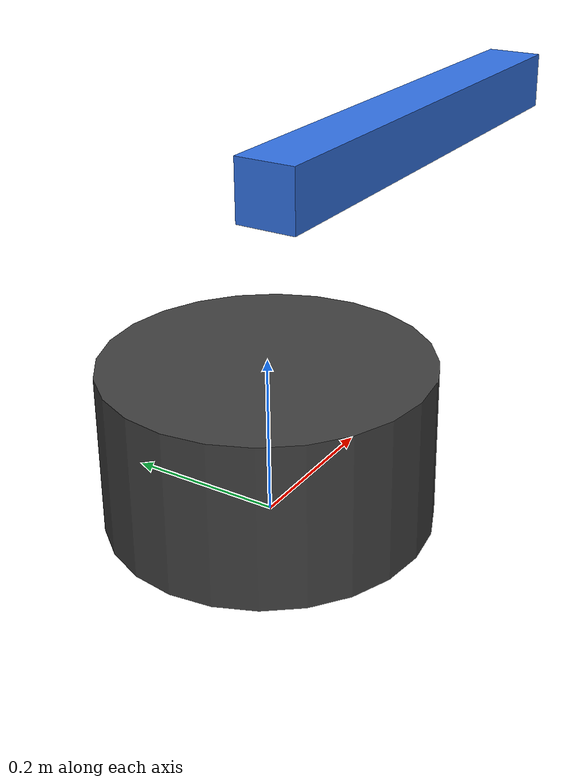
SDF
<?xml version="1.0" ?>

<sdf version="1.9">

  <world name="joint_test_world">

    <!-- ==================== World Systems ==================== -->

    <plugin
      filename="gz-sim-physics-system"
      name="gz::sim::systems::Physics">
    </plugin>

    <plugin
      filename="gz-sim-user-commands-system"
      name="gz::sim::systems::UserCommands">
    </plugin>

    <plugin
      filename="gz-sim-scene-broadcaster-system"
      name="gz::sim::systems::SceneBroadcaster">
    </plugin>

    <!-- ==================== Light ==================== -->

    <light type="directional" name="sun">
      <cast_shadows>true</cast_shadows>
      <pose>0 0 10 0 0 0</pose>

      <diffuse>0.8 0.8 0.8 1</diffuse>
      <specular>0.2 0.2 0.2 1</specular>

      <direction>-0.5 0.1 -0.9</direction>
    </light>

    <!-- ==================== Test Arm ==================== -->

    <model name="joint_test">

      <!-- ---------- Base ---------- -->

      <link name="base_link">

        <pose>0 0 0.1 0 0 0</pose>

        <inertial>
          <mass>2.0</mass>

          <inertia>
            <ixx>0.0267</ixx>
            <iyy>0.0267</iyy>
            <izz>0.0400</izz>

            <ixy>0</ixy>
            <ixz>0</ixz>
            <iyz>0</iyz>
          </inertia>
        </inertial>

        <visual name="base_visual">
          <geometry>
            <cylinder>
              <radius>0.20</radius>
              <length>0.20</length>
            </cylinder>
          </geometry>

          <material>
            <ambient>0.15 0.15 0.15 1</ambient>
            <diffuse>0.25 0.25 0.25 1</diffuse>
          </material>
        </visual>

        <collision name="base_collision">
          <geometry>
            <cylinder>
              <radius>0.20</radius>
              <length>0.20</length>
            </cylinder>
          </geometry>
        </collision>

      </link>

      <!-- ---------- Arm ---------- -->

      <link name="arm_link">

        <pose relative_to="base_link">
          0.35 0 0.30 0 0 0
        </pose>

        <inertial>
          <mass>0.30</mass>

          <inertia>
            <ixx>0.00032</ixx>
            <iyy>0.0124</iyy>
            <izz>0.0124</izz>

            <ixy>0</ixy>
            <ixz>0</ixz>
            <iyz>0</iyz>
          </inertia>
        </inertial>

        <visual name="arm_visual">
          <geometry>
            <box>
              <size>0.70 0.08 0.08</size>
            </box>
          </geometry>

          <material>
            <ambient>0.15 0.35 0.70 1</ambient>
            <diffuse>0.20 0.45 0.90 1</diffuse>
          </material>
        </visual>

        <collision name="arm_collision">
          <geometry>
            <box>
              <size>0.70 0.08 0.08</size>
            </box>
          </geometry>
        </collision>

      </link>

      <!-- ---------- Fix Base To World ---------- -->

      <joint name="base_fixed" type="fixed">

        <parent>world</parent>
        <child>base_link</child>

      </joint>

      <joint name="j1" type="revolute">

        <pose relative_to="base_link">
          0 0 0.30 0 0 0
        </pose>

        <parent>base_link</parent>
        <child>arm_link</child>

        <axis>

          <xyz>0 0 1</xyz>

          <limit>
            <lower>-1.5708</lower>
            <upper>1.5708</upper>

            <effort>20</effort>
            <velocity>2.0</velocity>
          </limit>

        </axis>

      </joint>

      <!-- ---------- J1 Position Controller ---------- -->

      <plugin
        filename="gz-sim-joint-position-controller-system"
        name="gz::sim::systems::JointPositionController">

        <joint_name>j1</joint_name>

        <p_gain>10.0</p_gain>
        <i_gain>0.0</i_gain>
        <d_gain>0.5</d_gain>

        <cmd_max>20.0</cmd_max>
        <cmd_min>-20.0</cmd_min>

      </plugin>

    </model>

  </world>

</sdf>
